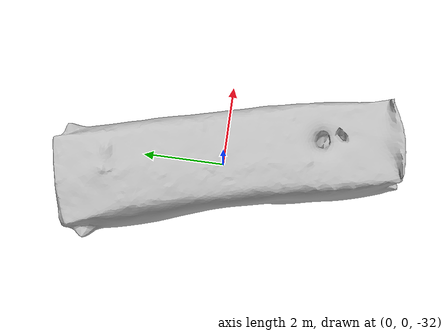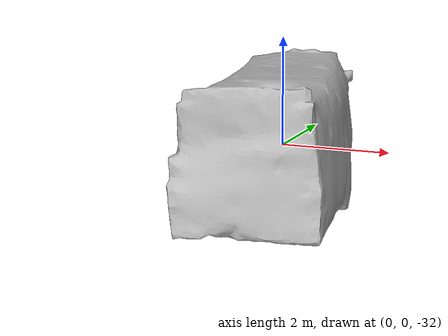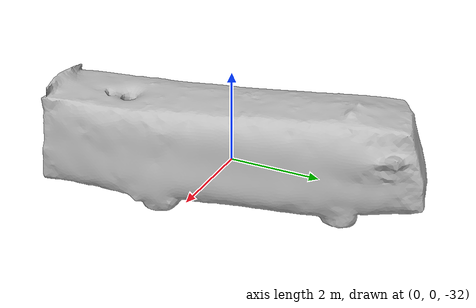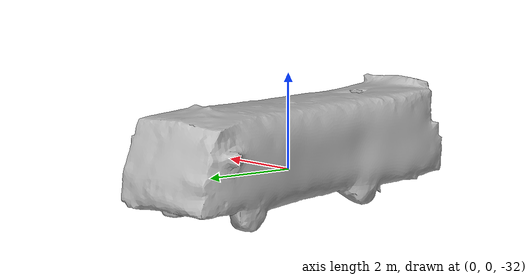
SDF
<?xml version='1.0'?>
<sdf version='1.7'>
  <model name='bus56'>
    <model name='kare-bus4'>
      <model name='kare-bus-2'>
        <model name='kare-bus'>
          <static>1</static>
          <link name='link'>
            <collision name='collision'>
              <geometry>
                <mesh>
                  <scale>8 8 8</scale>
                  <uri>/home/amadeus/model_editor_models/kare-bus/meshes/kare-bus.obj</uri>
                </mesh>
              </geometry>
              <max_contacts>10</max_contacts>
              <surface>
                <contact>
                  <ode/>
                </contact>
                <bounce/>
                <friction>
                  <torsional>
                    <ode/>
                  </torsional>
                  <ode/>
                </friction>
              </surface>
            </collision>
            <visual name='visual'>
              <geometry>
                <mesh>
                  <scale>8 8 8</scale>
                  <uri>/home/amadeus/model_editor_models/kare-bus/meshes/kare-bus.obj</uri>
                </mesh>
              </geometry>
            </visual>
            <self_collide>0</self_collide>
            <enable_wind>0</enable_wind>
            <kinematic>0</kinematic>
          </link>
          <pose>-3.3e-05 -0 -31.477697 1.57109 0.060055 1.57564</pose>
        </model>
        <static>0</static>
        <allow_auto_disable>1</allow_auto_disable>
        <pose>4.1e-05 -4.9e-05 -0 0 -0 1.83082</pose>
      </model>
      <static>0</static>
      <allow_auto_disable>1</allow_auto_disable>
      <pose>-4.2e-05 -5e-05 -0.147921 0 -0 0</pose>
    </model>
    <static>0</static>
    <allow_auto_disable>1</allow_auto_disable>
    <plugin name='model_move' filename='/home/amadeus/Downloads/dev_ws/src/articubot_one/worlds/build/libmodel_move.so'/>
  </model>
</sdf>
